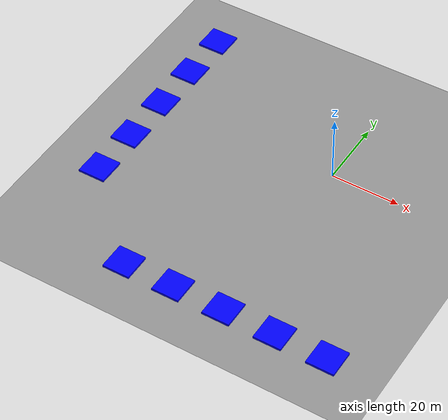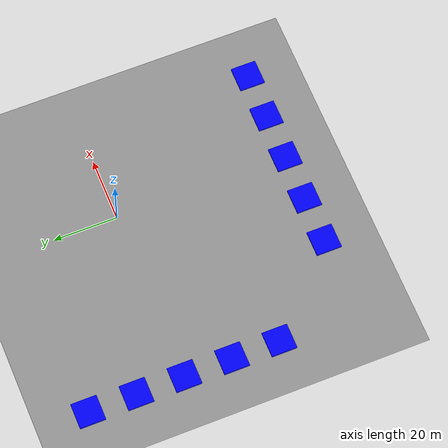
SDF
<sdf version="1.9">
 <world name="default">
  <physics type="ode">
   <max_step_size>0.01</max_step_size>
   <real_time_update_rate>60</real_time_update_rate>
  </physics>
  <model name="ground_plane">
   <static>true</static>
   <link name="link">
    <collision name="collision">
     <geometry><plane><normal>0 0 1</normal><size>100 100</size></plane></geometry>
     <surface><contact><collide_without_contact_bitmask>0x01</collide_without_contact_bitmask></contact></surface>
    </collision>
    <visual name="visual">
     <geometry><plane><normal>0 0 1</normal><size>100 100</size></plane></geometry>
     <material><ambient>0.6 0.6 0.6 1</ambient><diffuse>0.6 0.6 0.6 1</diffuse></material>
    </visual>
   </link>
  </model>
  <model name="moving_box_1">
   <pose>-55.0 30.0 0 0 0 0</pose>
   <link name="moving_link">
    <gravity>false</gravity>
    <visual name="visual">
     <geometry><box><size>8.0 8.0 1.0</size></box></geometry>
     <material><ambient>0 0 1 1</ambient></material>
    </visual>
   </link>
   <motion type="legacy-linear">
    <link_name>moving_link</link_name>
    <direction>1 0 0</direction>
    <amplitude>110.0</amplitude>
    <speed>25.0</speed>
    <use_fixed_seed>true</use_fixed_seed>
    <fixed_seed_value>123456789</fixed_seed_value>
    <turnaround_threshold>0.5</turnaround_threshold>
   </motion>
  </model>
  <model name="moving_box_2">
   <pose>-55.0 15.0 0 0 0 0</pose>
   <link name="moving_link">
    <gravity>false</gravity>
    <visual name="visual">
     <geometry><box><size>8.0 8.0 1.0</size></box></geometry>
     <material><ambient>0 0 1 1</ambient></material>
    </visual>
   </link>
   <motion type="legacy-linear">
    <link_name>moving_link</link_name>
    <direction>1 0 0</direction>
    <amplitude>110.0</amplitude>
    <speed>25.0</speed>
    <use_fixed_seed>true</use_fixed_seed>
    <fixed_seed_value>123456789</fixed_seed_value>
    <turnaround_threshold>0.5</turnaround_threshold>
   </motion>
  </model>
  <model name="moving_box_3">
   <pose>-55.0 0.0 0 0 0 0</pose>
   <link name="moving_link">
    <gravity>false</gravity>
    <visual name="visual">
     <geometry><box><size>8.0 8.0 1.0</size></box></geometry>
     <material><ambient>0 0 1 1</ambient></material>
    </visual>
   </link>
   <motion type="legacy-linear">
    <link_name>moving_link</link_name>
    <direction>1 0 0</direction>
    <amplitude>110.0</amplitude>
    <speed>25.0</speed>
    <use_fixed_seed>true</use_fixed_seed>
    <fixed_seed_value>123456789</fixed_seed_value>
    <turnaround_threshold>0.5</turnaround_threshold>
   </motion>
  </model>
  <model name="moving_box_4">
   <pose>-55.0 -15 0 0 0 0</pose>
   <link name="moving_link">
    <gravity>false</gravity>
    <visual name="visual">
     <geometry><box><size>8.0 8.0 1.0</size></box></geometry>
     <material><ambient>0 0 1 1</ambient></material>
    </visual>
   </link>
   <motion type="legacy-linear">
    <link_name>moving_link</link_name>
    <direction>1 0 0</direction>
    <amplitude>110.0</amplitude>
    <speed>25.0</speed>
    <use_fixed_seed>true</use_fixed_seed>
    <fixed_seed_value>123456789</fixed_seed_value>
    <turnaround_threshold>0.5</turnaround_threshold>
   </motion>
  </model>
  <model name="moving_box_5">
   <pose>-55.0 -30 0 0 0 0</pose>
   <link name="moving_link">
    <gravity>false</gravity>
    <visual name="visual">
     <geometry><box><size>8.0 8.0 1.0</size></box></geometry>
     <material><ambient>0 0 1 1</ambient></material>
    </visual>
   </link>
   <motion type="legacy-linear">
    <link_name>moving_link</link_name>
    <direction>1 0 0</direction>
    <amplitude>110.0</amplitude>
    <speed>25.0</speed>
    <use_fixed_seed>true</use_fixed_seed>
    <fixed_seed_value>123456789</fixed_seed_value>
    <turnaround_threshold>0.5</turnaround_threshold>
   </motion>
  </model>
  <model name="moving_box_6">
   <pose>-30.0 -55.0 0 0 0 0</pose>
   <link name="moving_link">
    <gravity>false</gravity>
    <visual name="visual">
     <geometry><box><size>8.0 8.0 1.0</size></box></geometry>
     <material><ambient>0 0 1 1</ambient></material>
    </visual>
   </link>
   <motion type="legacy-linear">
    <link_name>moving_link</link_name>
    <direction>0 1 0</direction>
    <amplitude>110.0</amplitude>
    <speed>25.0</speed>
    <use_fixed_seed>true</use_fixed_seed>
    <fixed_seed_value>123456789</fixed_seed_value>
    <turnaround_threshold>0.5</turnaround_threshold>
   </motion>
  </model>
  <model name="moving_box_7">
   <pose>-15.0 -55.0 0 0 0 0</pose>
   <link name="moving_link">
    <gravity>false</gravity>
    <visual name="visual">
     <geometry><box><size>8.0 8.0 1.0</size></box></geometry>
     <material><ambient>0 0 1 1</ambient></material>
    </visual>
   </link>
   <motion type="legacy-linear">
    <link_name>moving_link</link_name>
    <direction>0 1 0</direction>
    <amplitude>110.0</amplitude>
    <speed>25.0</speed>
    <use_fixed_seed>true</use_fixed_seed>
    <fixed_seed_value>123456789</fixed_seed_value>
    <turnaround_threshold>0.5</turnaround_threshold>
   </motion>
  </model>
  <model name="moving_box_8">
   <pose>0.0 -55.0 0 0 0 0</pose>
   <link name="moving_link">
    <gravity>false</gravity>
    <visual name="visual">
     <geometry><box><size>8.0 8.0 1.0</size></box></geometry>
     <material><ambient>0 0 1 1</ambient></material>
    </visual>
   </link>
   <motion type="legacy-linear">
    <link_name>moving_link</link_name>
    <direction>0 1 0</direction>
    <amplitude>110.0</amplitude>
    <speed>25.0</speed>
    <use_fixed_seed>true</use_fixed_seed>
    <fixed_seed_value>123456789</fixed_seed_value>
    <turnaround_threshold>0.5</turnaround_threshold>
   </motion>
  </model>
  <model name="moving_box_9">
   <pose>15.0 -55 0 0 0 0</pose>
   <link name="moving_link">
    <gravity>false</gravity>
    <visual name="visual">
     <geometry><box><size>8.0 8.0 1.0</size></box></geometry>
     <material><ambient>0 0 1 1</ambient></material>
    </visual>
   </link>
   <motion type="legacy-linear">
    <link_name>moving_link</link_name>
    <direction>0 1 0</direction>
    <amplitude>110.0</amplitude>
    <speed>25.0</speed>
    <use_fixed_seed>true</use_fixed_seed>
    <fixed_seed_value>123456789</fixed_seed_value>
    <turnaround_threshold>0.5</turnaround_threshold>
   </motion>
  </model>
  <model name="moving_box_10">
   <pose>30.0 -55 0 0 0 0</pose>
   <link name="moving_link">
    <gravity>false</gravity>
    <visual name="visual">
     <geometry><box><size>8.0 8.0 1.0</size></box></geometry>
     <material><ambient>0 0 1 1</ambient></material>
    </visual>
   </link>
   <motion type="legacy-linear">
    <link_name>moving_link</link_name>
    <direction>0 1 0</direction>
    <amplitude>110.0</amplitude>
    <speed>25.0</speed>
    <use_fixed_seed>true</use_fixed_seed>
    <fixed_seed_value>123456789</fixed_seed_value>
    <turnaround_threshold>0.5</turnaround_threshold>
   </motion>
  </model>
 </world>
</sdf>
